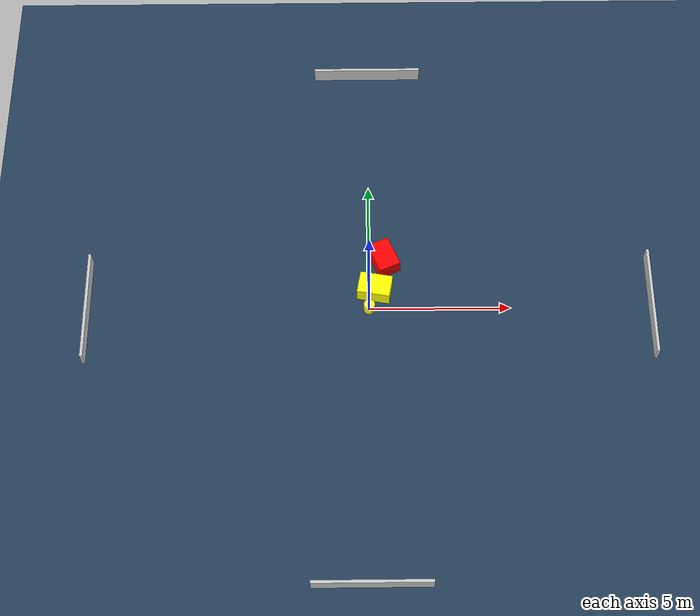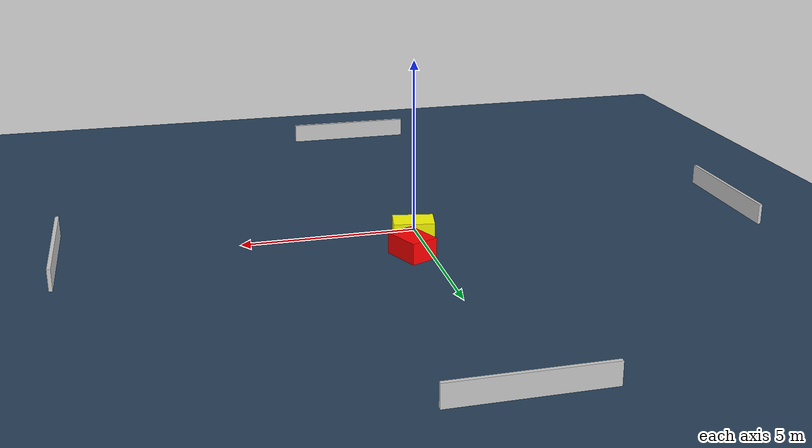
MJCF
<?xml version="1.0" ?>
<mujoco model="generated_environment">
  <option timestep="0.01" integrator="RK4" cone="elliptic"/>
  <default>
    <geom density="1"/>
  </default>
  <asset>
    <texture builtin="gradient" height="3072" name="skybox" rgb1="0.3 0.5 0.7" rgb2="0 0 0" type="skybox" width="512"/>
    <texture builtin="checker" height="300" name="groundplane" rgb1="0.2 0.3 0.4" rgb2="0.1 0.2 0.3" type="2d" width="300"/>
    <material name="groundplane" reflectance="0.2" texrepeat="5 5" texture="groundplane"/>
  </asset>
  <worldbody>
    <light dir="0 0 -1" directional="true" pos="0 0 1.5"/>
    <geom condim="3" friction="0.5 0.005 0.001" material="groundplane" name="floor" pos="0 0 0" size="0 0 0.05" type="plane"/>
    <body name="walls">
      <geom name="wall_1" condim="4" pos="-10.0 0.0 0.3" rgba="0.800000011920929 0.800000011920929 0.800000011920929 1.0" size="0.05 2.0 0.3" type="box"/>
      <geom name="wall_2" condim="4" pos="10.0 0.0 0.3" rgba="0.800000011920929 0.800000011920929 0.800000011920929 1.0" size="0.05 2.0 0.3" type="box"/>
      <geom name="wall_3" condim="4" pos="0.0 -10.0 0.3" rgba="0.800000011920929 0.800000011920929 0.800000011920929 1.0" size="2.0 0.05 0.3" type="box"/>
      <geom name="wall_4" condim="4" pos="0.0 10.0 0.3" rgba="0.800000011920929 0.800000011920929 0.800000011920929 1.0" size="2.0 0.05 0.3" type="box"/>
    </body>
    <body name="robot">
      <joint name="joint_x" type="slide" pos="0 0 0" axis="1 0 0"/>
      <joint name="joint_y" type="slide" pos="0 0 0" axis="0 1 0"/>
      <geom name="robot" type="cylinder" pos="0.0 0.0 0.2" size="0.2 0.2 0.0" mass="5.0" friction="1.0 0.005 0.0001" condim="4" rgba="1.0 1.0 0.0 1.0"/>
    </body>
    <body name="obstacle_1_movable">
      <geom name="obstacle_1_movable" condim="4" pos="0.20120364442070368 0.7118043663331575 0.3" euler="0 0 169.75210050237536" friction="0.0 0.005 0.001" rgba="1.0 1.0 0.0 1.0" size="0.5800270035493804 0.4027863857151424 0.3" type="box" mass="0.1"/>
      <joint type="free"/>
    </body>
    <body name="obstacle_2_static">
      <geom name="obstacle_2_static" condim="4" pos="0.5326233796770775 1.9046033392995763 0.3" euler="0 0 113.40577567267822" friction="0.0 0.005 0.001" rgba="1.0 0.0 0.0 1.0" size="0.5640469624194988 0.3999205493132457 0.3" type="box"/>
    </body>
  </worldbody>
  <actuator>
    <motor name="actuator_x" joint="joint_x" gear="1" ctrlrange="-1 1"/>
    <motor name="actuator_y" joint="joint_y" gear="1" ctrlrange="-1 1"/>
  </actuator>
</mujoco>
